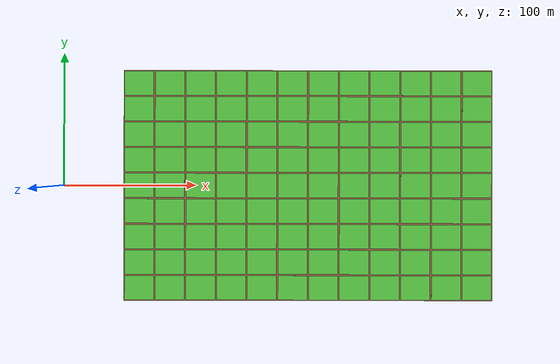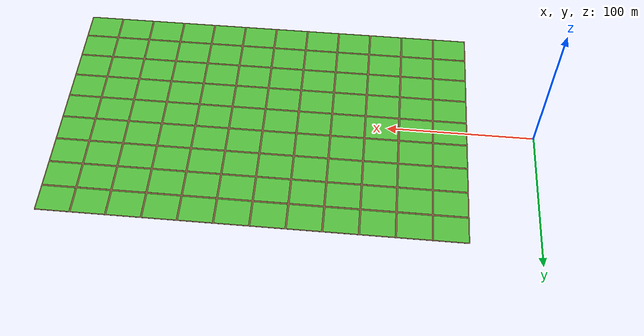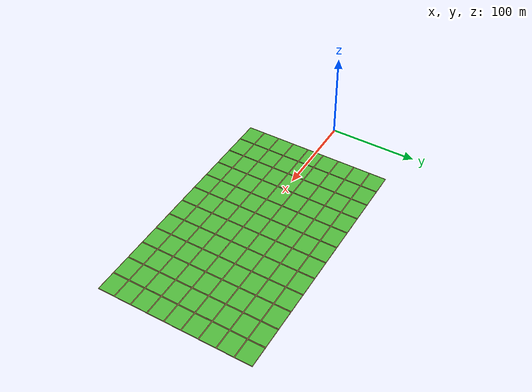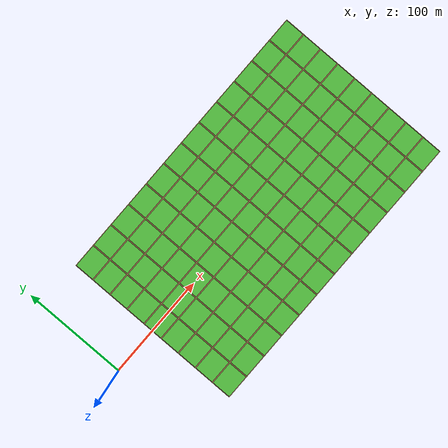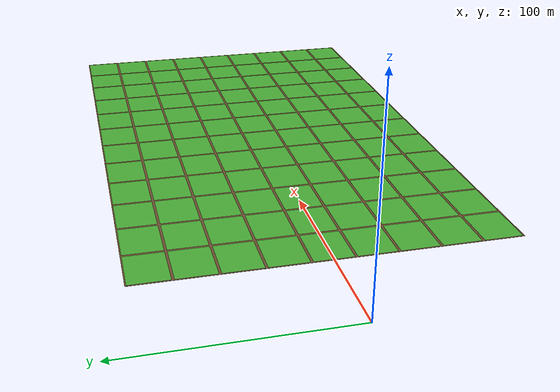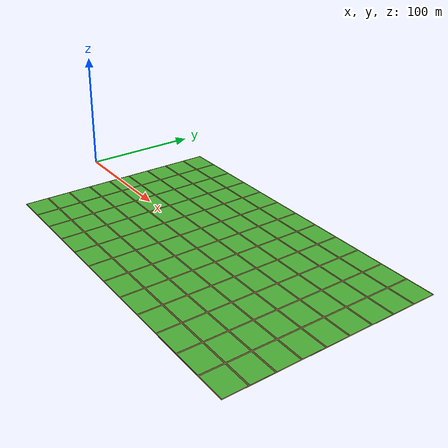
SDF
<sdf version="1.9">
 <world name="agricultural_field">
  <model name="sawah_kanan_atas">
   <static>true</static>
   <pose>185 0 0 0 0 0</pose>
   <link name="link">
    <visual name="soil_base">
     <geometry><box><size>280.00 175.00 0.10</size></box></geometry>
     <material><ambient>0.35 0.25 0.15 1</ambient><diffuse>0.45 0.32 0.20 1</diffuse></material>
    </visual>
    <visual name="plot_0">
     <pose>-128.33 -77.78 0.060 0 0 0</pose>
     <geometry><box><size>22.13 18.24 0.02</size></box></geometry>
     <material><ambient>0.20 0.50 0.15 1</ambient><diffuse>0.30 0.70 0.22 1</diffuse></material>
    </visual>
    <visual name="plot_1">
     <pose>-128.33 -58.33 0.060 0 0 0</pose>
     <geometry><box><size>22.13 18.24 0.02</size></box></geometry>
     <material><ambient>0.20 0.50 0.15 1</ambient><diffuse>0.30 0.70 0.22 1</diffuse></material>
    </visual>
    <visual name="plot_2">
     <pose>-128.33 -38.89 0.060 0 0 0</pose>
     <geometry><box><size>22.13 18.24 0.02</size></box></geometry>
     <material><ambient>0.20 0.50 0.15 1</ambient><diffuse>0.30 0.70 0.22 1</diffuse></material>
    </visual>
    <visual name="plot_3">
     <pose>-128.33 -19.44 0.060 0 0 0</pose>
     <geometry><box><size>22.13 18.24 0.02</size></box></geometry>
     <material><ambient>0.20 0.50 0.15 1</ambient><diffuse>0.30 0.70 0.22 1</diffuse></material>
    </visual>
    <visual name="plot_4">
     <pose>-128.33 0.00 0.060 0 0 0</pose>
     <geometry><box><size>22.13 18.24 0.02</size></box></geometry>
     <material><ambient>0.20 0.50 0.15 1</ambient><diffuse>0.30 0.70 0.22 1</diffuse></material>
    </visual>
    <visual name="plot_5">
     <pose>-128.33 19.44 0.060 0 0 0</pose>
     <geometry><box><size>22.13 18.24 0.02</size></box></geometry>
     <material><ambient>0.20 0.50 0.15 1</ambient><diffuse>0.30 0.70 0.22 1</diffuse></material>
    </visual>
    <visual name="plot_6">
     <pose>-128.33 38.89 0.060 0 0 0</pose>
     <geometry><box><size>22.13 18.24 0.02</size></box></geometry>
     <material><ambient>0.20 0.50 0.15 1</ambient><diffuse>0.30 0.70 0.22 1</diffuse></material>
    </visual>
    <visual name="plot_7">
     <pose>-128.33 58.33 0.060 0 0 0</pose>
     <geometry><box><size>22.13 18.24 0.02</size></box></geometry>
     <material><ambient>0.20 0.50 0.15 1</ambient><diffuse>0.30 0.70 0.22 1</diffuse></material>
    </visual>
    <visual name="plot_8">
     <pose>-128.33 77.78 0.060 0 0 0</pose>
     <geometry><box><size>22.13 18.24 0.02</size></box></geometry>
     <material><ambient>0.20 0.50 0.15 1</ambient><diffuse>0.30 0.70 0.22 1</diffuse></material>
    </visual>
    <visual name="plot_9">
     <pose>-105.00 -77.78 0.060 0 0 0</pose>
     <geometry><box><size>22.13 18.24 0.02</size></box></geometry>
     <material><ambient>0.20 0.50 0.15 1</ambient><diffuse>0.30 0.70 0.22 1</diffuse></material>
    </visual>
    <visual name="plot_10">
     <pose>-105.00 -58.33 0.060 0 0 0</pose>
     <geometry><box><size>22.13 18.24 0.02</size></box></geometry>
     <material><ambient>0.20 0.50 0.15 1</ambient><diffuse>0.30 0.70 0.22 1</diffuse></material>
    </visual>
    <visual name="plot_11">
     <pose>-105.00 -38.89 0.060 0 0 0</pose>
     <geometry><box><size>22.13 18.24 0.02</size></box></geometry>
     <material><ambient>0.20 0.50 0.15 1</ambient><diffuse>0.30 0.70 0.22 1</diffuse></material>
    </visual>
    <visual name="plot_12">
     <pose>-105.00 -19.44 0.060 0 0 0</pose>
     <geometry><box><size>22.13 18.24 0.02</size></box></geometry>
     <material><ambient>0.20 0.50 0.15 1</ambient><diffuse>0.30 0.70 0.22 1</diffuse></material>
    </visual>
    <visual name="plot_13">
     <pose>-105.00 0.00 0.060 0 0 0</pose>
     <geometry><box><size>22.13 18.24 0.02</size></box></geometry>
     <material><ambient>0.20 0.50 0.15 1</ambient><diffuse>0.30 0.70 0.22 1</diffuse></material>
    </visual>
    <visual name="plot_14">
     <pose>-105.00 19.44 0.060 0 0 0</pose>
     <geometry><box><size>22.13 18.24 0.02</size></box></geometry>
     <material><ambient>0.20 0.50 0.15 1</ambient><diffuse>0.30 0.70 0.22 1</diffuse></material>
    </visual>
    <visual name="plot_15">
     <pose>-105.00 38.89 0.060 0 0 0</pose>
     <geometry><box><size>22.13 18.24 0.02</size></box></geometry>
     <material><ambient>0.20 0.50 0.15 1</ambient><diffuse>0.30 0.70 0.22 1</diffuse></material>
    </visual>
    <visual name="plot_16">
     <pose>-105.00 58.33 0.060 0 0 0</pose>
     <geometry><box><size>22.13 18.24 0.02</size></box></geometry>
     <material><ambient>0.20 0.50 0.15 1</ambient><diffuse>0.30 0.70 0.22 1</diffuse></material>
    </visual>
    <visual name="plot_17">
     <pose>-105.00 77.78 0.060 0 0 0</pose>
     <geometry><box><size>22.13 18.24 0.02</size></box></geometry>
     <material><ambient>0.20 0.50 0.15 1</ambient><diffuse>0.30 0.70 0.22 1</diffuse></material>
    </visual>
    <visual name="plot_18">
     <pose>-81.67 -77.78 0.060 0 0 0</pose>
     <geometry><box><size>22.13 18.24 0.02</size></box></geometry>
     <material><ambient>0.20 0.50 0.15 1</ambient><diffuse>0.30 0.70 0.22 1</diffuse></material>
    </visual>
    <visual name="plot_19">
     <pose>-81.67 -58.33 0.060 0 0 0</pose>
     <geometry><box><size>22.13 18.24 0.02</size></box></geometry>
     <material><ambient>0.20 0.50 0.15 1</ambient><diffuse>0.30 0.70 0.22 1</diffuse></material>
    </visual>
    <visual name="plot_20">
     <pose>-81.67 -38.89 0.060 0 0 0</pose>
     <geometry><box><size>22.13 18.24 0.02</size></box></geometry>
     <material><ambient>0.20 0.50 0.15 1</ambient><diffuse>0.30 0.70 0.22 1</diffuse></material>
    </visual>
    <visual name="plot_21">
     <pose>-81.67 -19.44 0.060 0 0 0</pose>
     <geometry><box><size>22.13 18.24 0.02</size></box></geometry>
     <material><ambient>0.20 0.50 0.15 1</ambient><diffuse>0.30 0.70 0.22 1</diffuse></material>
    </visual>
    <visual name="plot_22">
     <pose>-81.67 0.00 0.060 0 0 0</pose>
     <geometry><box><size>22.13 18.24 0.02</size></box></geometry>
     <material><ambient>0.20 0.50 0.15 1</ambient><diffuse>0.30 0.70 0.22 1</diffuse></material>
    </visual>
    <visual name="plot_23">
     <pose>-81.67 19.44 0.060 0 0 0</pose>
     <geometry><box><size>22.13 18.24 0.02</size></box></geometry>
     <material><ambient>0.20 0.50 0.15 1</ambient><diffuse>0.30 0.70 0.22 1</diffuse></material>
    </visual>
    <visual name="plot_24">
     <pose>-81.67 38.89 0.060 0 0 0</pose>
     <geometry><box><size>22.13 18.24 0.02</size></box></geometry>
     <material><ambient>0.20 0.50 0.15 1</ambient><diffuse>0.30 0.70 0.22 1</diffuse></material>
    </visual>
    <visual name="plot_25">
     <pose>-81.67 58.33 0.060 0 0 0</pose>
     <geometry><box><size>22.13 18.24 0.02</size></box></geometry>
     <material><ambient>0.20 0.50 0.15 1</ambient><diffuse>0.30 0.70 0.22 1</diffuse></material>
    </visual>
    <visual name="plot_26">
     <pose>-81.67 77.78 0.060 0 0 0</pose>
     <geometry><box><size>22.13 18.24 0.02</size></box></geometry>
     <material><ambient>0.20 0.50 0.15 1</ambient><diffuse>0.30 0.70 0.22 1</diffuse></material>
    </visual>
    <visual name="plot_27">
     <pose>-58.33 -77.78 0.060 0 0 0</pose>
     <geometry><box><size>22.13 18.24 0.02</size></box></geometry>
     <material><ambient>0.20 0.50 0.15 1</ambient><diffuse>0.30 0.70 0.22 1</diffuse></material>
    </visual>
    <visual name="plot_28">
     <pose>-58.33 -58.33 0.060 0 0 0</pose>
     <geometry><box><size>22.13 18.24 0.02</size></box></geometry>
     <material><ambient>0.20 0.50 0.15 1</ambient><diffuse>0.30 0.70 0.22 1</diffuse></material>
    </visual>
    <visual name="plot_29">
     <pose>-58.33 -38.89 0.060 0 0 0</pose>
     <geometry><box><size>22.13 18.24 0.02</size></box></geometry>
     <material><ambient>0.20 0.50 0.15 1</ambient><diffuse>0.30 0.70 0.22 1</diffuse></material>
    </visual>
    <visual name="plot_30">
     <pose>-58.33 -19.44 0.060 0 0 0</pose>
     <geometry><box><size>22.13 18.24 0.02</size></box></geometry>
     <material><ambient>0.20 0.50 0.15 1</ambient><diffuse>0.30 0.70 0.22 1</diffuse></material>
    </visual>
    <visual name="plot_31">
     <pose>-58.33 0.00 0.060 0 0 0</pose>
     <geometry><box><size>22.13 18.24 0.02</size></box></geometry>
     <material><ambient>0.20 0.50 0.15 1</ambient><diffuse>0.30 0.70 0.22 1</diffuse></material>
    </visual>
    <visual name="plot_32">
     <pose>-58.33 19.44 0.060 0 0 0</pose>
     <geometry><box><size>22.13 18.24 0.02</size></box></geometry>
     <material><ambient>0.20 0.50 0.15 1</ambient><diffuse>0.30 0.70 0.22 1</diffuse></material>
    </visual>
    <visual name="plot_33">
     <pose>-58.33 38.89 0.060 0 0 0</pose>
     <geometry><box><size>22.13 18.24 0.02</size></box></geometry>
     <material><ambient>0.20 0.50 0.15 1</ambient><diffuse>0.30 0.70 0.22 1</diffuse></material>
    </visual>
    <visual name="plot_34">
     <pose>-58.33 58.33 0.060 0 0 0</pose>
     <geometry><box><size>22.13 18.24 0.02</size></box></geometry>
     <material><ambient>0.20 0.50 0.15 1</ambient><diffuse>0.30 0.70 0.22 1</diffuse></material>
    </visual>
    <visual name="plot_35">
     <pose>-58.33 77.78 0.060 0 0 0</pose>
     <geometry><box><size>22.13 18.24 0.02</size></box></geometry>
     <material><ambient>0.20 0.50 0.15 1</ambient><diffuse>0.30 0.70 0.22 1</diffuse></material>
    </visual>
    <visual name="plot_36">
     <pose>-35.00 -77.78 0.060 0 0 0</pose>
     <geometry><box><size>22.13 18.24 0.02</size></box></geometry>
     <material><ambient>0.20 0.50 0.15 1</ambient><diffuse>0.30 0.70 0.22 1</diffuse></material>
    </visual>
    <visual name="plot_37">
     <pose>-35.00 -58.33 0.060 0 0 0</pose>
     <geometry><box><size>22.13 18.24 0.02</size></box></geometry>
     <material><ambient>0.20 0.50 0.15 1</ambient><diffuse>0.30 0.70 0.22 1</diffuse></material>
    </visual>
    <visual name="plot_38">
     <pose>-35.00 -38.89 0.060 0 0 0</pose>
     <geometry><box><size>22.13 18.24 0.02</size></box></geometry>
     <material><ambient>0.20 0.50 0.15 1</ambient><diffuse>0.30 0.70 0.22 1</diffuse></material>
    </visual>
    <visual name="plot_39">
     <pose>-35.00 -19.44 0.060 0 0 0</pose>
     <geometry><box><size>22.13 18.24 0.02</size></box></geometry>
     <material><ambient>0.20 0.50 0.15 1</ambient><diffuse>0.30 0.70 0.22 1</diffuse></material>
    </visual>
    <visual name="plot_40">
     <pose>-35.00 0.00 0.060 0 0 0</pose>
     <geometry><box><size>22.13 18.24 0.02</size></box></geometry>
     <material><ambient>0.20 0.50 0.15 1</ambient><diffuse>0.30 0.70 0.22 1</diffuse></material>
    </visual>
    <visual name="plot_41">
     <pose>-35.00 19.44 0.060 0 0 0</pose>
     <geometry><box><size>22.13 18.24 0.02</size></box></geometry>
     <material><ambient>0.20 0.50 0.15 1</ambient><diffuse>0.30 0.70 0.22 1</diffuse></material>
    </visual>
    <visual name="plot_42">
     <pose>-35.00 38.89 0.060 0 0 0</pose>
     <geometry><box><size>22.13 18.24 0.02</size></box></geometry>
     <material><ambient>0.20 0.50 0.15 1</ambient><diffuse>0.30 0.70 0.22 1</diffuse></material>
    </visual>
    <visual name="plot_43">
     <pose>-35.00 58.33 0.060 0 0 0</pose>
     <geometry><box><size>22.13 18.24 0.02</size></box></geometry>
     <material><ambient>0.20 0.50 0.15 1</ambient><diffuse>0.30 0.70 0.22 1</diffuse></material>
    </visual>
    <visual name="plot_44">
     <pose>-35.00 77.78 0.060 0 0 0</pose>
     <geometry><box><size>22.13 18.24 0.02</size></box></geometry>
     <material><ambient>0.20 0.50 0.15 1</ambient><diffuse>0.30 0.70 0.22 1</diffuse></material>
    </visual>
    <visual name="plot_45">
     <pose>-11.67 -77.78 0.060 0 0 0</pose>
     <geometry><box><size>22.13 18.24 0.02</size></box></geometry>
     <material><ambient>0.20 0.50 0.15 1</ambient><diffuse>0.30 0.70 0.22 1</diffuse></material>
    </visual>
    <visual name="plot_46">
     <pose>-11.67 -58.33 0.060 0 0 0</pose>
     <geometry><box><size>22.13 18.24 0.02</size></box></geometry>
     <material><ambient>0.20 0.50 0.15 1</ambient><diffuse>0.30 0.70 0.22 1</diffuse></material>
    </visual>
    <visual name="plot_47">
     <pose>-11.67 -38.89 0.060 0 0 0</pose>
     <geometry><box><size>22.13 18.24 0.02</size></box></geometry>
     <material><ambient>0.20 0.50 0.15 1</ambient><diffuse>0.30 0.70 0.22 1</diffuse></material>
    </visual>
    <visual name="plot_48">
     <pose>-11.67 -19.44 0.060 0 0 0</pose>
     <geometry><box><size>22.13 18.24 0.02</size></box></geometry>
     <material><ambient>0.20 0.50 0.15 1</ambient><diffuse>0.30 0.70 0.22 1</diffuse></material>
    </visual>
    <visual name="plot_49">
     <pose>-11.67 0.00 0.060 0 0 0</pose>
     <geometry><box><size>22.13 18.24 0.02</size></box></geometry>
     <material><ambient>0.20 0.50 0.15 1</ambient><diffuse>0.30 0.70 0.22 1</diffuse></material>
    </visual>
    <visual name="plot_50">
     <pose>-11.67 19.44 0.060 0 0 0</pose>
     <geometry><box><size>22.13 18.24 0.02</size></box></geometry>
     <material><ambient>0.20 0.50 0.15 1</ambient><diffuse>0.30 0.70 0.22 1</diffuse></material>
    </visual>
    <visual name="plot_51">
     <pose>-11.67 38.89 0.060 0 0 0</pose>
     <geometry><box><size>22.13 18.24 0.02</size></box></geometry>
     <material><ambient>0.20 0.50 0.15 1</ambient><diffuse>0.30 0.70 0.22 1</diffuse></material>
    </visual>
    <visual name="plot_52">
     <pose>-11.67 58.33 0.060 0 0 0</pose>
     <geometry><box><size>22.13 18.24 0.02</size></box></geometry>
     <material><ambient>0.20 0.50 0.15 1</ambient><diffuse>0.30 0.70 0.22 1</diffuse></material>
    </visual>
    <visual name="plot_53">
     <pose>-11.67 77.78 0.060 0 0 0</pose>
     <geometry><box><size>22.13 18.24 0.02</size></box></geometry>
     <material><ambient>0.20 0.50 0.15 1</ambient><diffuse>0.30 0.70 0.22 1</diffuse></material>
    </visual>
    <visual name="plot_54">
     <pose>11.67 -77.78 0.060 0 0 0</pose>
     <geometry><box><size>22.13 18.24 0.02</size></box></geometry>
     <material><ambient>0.20 0.50 0.15 1</ambient><diffuse>0.30 0.70 0.22 1</diffuse></material>
    </visual>
    <visual name="plot_55">
     <pose>11.67 -58.33 0.060 0 0 0</pose>
     <geometry><box><size>22.13 18.24 0.02</size></box></geometry>
     <material><ambient>0.20 0.50 0.15 1</ambient><diffuse>0.30 0.70 0.22 1</diffuse></material>
    </visual>
    <visual name="plot_56">
     <pose>11.67 -38.89 0.060 0 0 0</pose>
     <geometry><box><size>22.13 18.24 0.02</size></box></geometry>
     <material><ambient>0.20 0.50 0.15 1</ambient><diffuse>0.30 0.70 0.22 1</diffuse></material>
    </visual>
    <visual name="plot_57">
     <pose>11.67 -19.44 0.060 0 0 0</pose>
     <geometry><box><size>22.13 18.24 0.02</size></box></geometry>
     <material><ambient>0.20 0.50 0.15 1</ambient><diffuse>0.30 0.70 0.22 1</diffuse></material>
    </visual>
    <visual name="plot_58">
     <pose>11.67 0.00 0.060 0 0 0</pose>
     <geometry><box><size>22.13 18.24 0.02</size></box></geometry>
     <material><ambient>0.20 0.50 0.15 1</ambient><diffuse>0.30 0.70 0.22 1</diffuse></material>
    </visual>
    <visual name="plot_59">
     <pose>11.67 19.44 0.060 0 0 0</pose>
     <geometry><box><size>22.13 18.24 0.02</size></box></geometry>
     <material><ambient>0.20 0.50 0.15 1</ambient><diffuse>0.30 0.70 0.22 1</diffuse></material>
    </visual>
    <visual name="plot_60">
     <pose>11.67 38.89 0.060 0 0 0</pose>
     <geometry><box><size>22.13 18.24 0.02</size></box></geometry>
     <material><ambient>0.20 0.50 0.15 1</ambient><diffuse>0.30 0.70 0.22 1</diffuse></material>
    </visual>
    <visual name="plot_61">
     <pose>11.67 58.33 0.060 0 0 0</pose>
     <geometry><box><size>22.13 18.24 0.02</size></box></geometry>
     <material><ambient>0.20 0.50 0.15 1</ambient><diffuse>0.30 0.70 0.22 1</diffuse></material>
    </visual>
    <visual name="plot_62">
     <pose>11.67 77.78 0.060 0 0 0</pose>
     <geometry><box><size>22.13 18.24 0.02</size></box></geometry>
     <material><ambient>0.20 0.50 0.15 1</ambient><diffuse>0.30 0.70 0.22 1</diffuse></material>
    </visual>
    <visual name="plot_63">
     <pose>35.00 -77.78 0.060 0 0 0</pose>
     <geometry><box><size>22.13 18.24 0.02</size></box></geometry>
     <material><ambient>0.20 0.50 0.15 1</ambient><diffuse>0.30 0.70 0.22 1</diffuse></material>
    </visual>
    <visual name="plot_64">
     <pose>35.00 -58.33 0.060 0 0 0</pose>
     <geometry><box><size>22.13 18.24 0.02</size></box></geometry>
     <material><ambient>0.20 0.50 0.15 1</ambient><diffuse>0.30 0.70 0.22 1</diffuse></material>
    </visual>
    <visual name="plot_65">
     <pose>35.00 -38.89 0.060 0 0 0</pose>
     <geometry><box><size>22.13 18.24 0.02</size></box></geometry>
     <material><ambient>0.20 0.50 0.15 1</ambient><diffuse>0.30 0.70 0.22 1</diffuse></material>
    </visual>
    <visual name="plot_66">
     <pose>35.00 -19.44 0.060 0 0 0</pose>
     <geometry><box><size>22.13 18.24 0.02</size></box></geometry>
     <material><ambient>0.20 0.50 0.15 1</ambient><diffuse>0.30 0.70 0.22 1</diffuse></material>
    </visual>
    <visual name="plot_67">
     <pose>35.00 0.00 0.060 0 0 0</pose>
     <geometry><box><size>22.13 18.24 0.02</size></box></geometry>
     <material><ambient>0.20 0.50 0.15 1</ambient><diffuse>0.30 0.70 0.22 1</diffuse></material>
    </visual>
    <visual name="plot_68">
     <pose>35.00 19.44 0.060 0 0 0</pose>
     <geometry><box><size>22.13 18.24 0.02</size></box></geometry>
     <material><ambient>0.20 0.50 0.15 1</ambient><diffuse>0.30 0.70 0.22 1</diffuse></material>
    </visual>
    <visual name="plot_69">
     <pose>35.00 38.89 0.060 0 0 0</pose>
     <geometry><box><size>22.13 18.24 0.02</size></box></geometry>
     <material><ambient>0.20 0.50 0.15 1</ambient><diffuse>0.30 0.70 0.22 1</diffuse></material>
    </visual>
    <visual name="plot_70">
     <pose>35.00 58.33 0.060 0 0 0</pose>
     <geometry><box><size>22.13 18.24 0.02</size></box></geometry>
     <material><ambient>0.20 0.50 0.15 1</ambient><diffuse>0.30 0.70 0.22 1</diffuse></material>
    </visual>
    <visual name="plot_71">
     <pose>35.00 77.78 0.060 0 0 0</pose>
     <geometry><box><size>22.13 18.24 0.02</size></box></geometry>
     <material><ambient>0.20 0.50 0.15 1</ambient><diffuse>0.30 0.70 0.22 1</diffuse></material>
    </visual>
    <visual name="plot_72">
     <pose>58.33 -77.78 0.060 0 0 0</pose>
     <geometry><box><size>22.13 18.24 0.02</size></box></geometry>
     <material><ambient>0.20 0.50 0.15 1</ambient><diffuse>0.30 0.70 0.22 1</diffuse></material>
    </visual>
    <visual name="plot_73">
     <pose>58.33 -58.33 0.060 0 0 0</pose>
     <geometry><box><size>22.13 18.24 0.02</size></box></geometry>
     <material><ambient>0.20 0.50 0.15 1</ambient><diffuse>0.30 0.70 0.22 1</diffuse></material>
    </visual>
    <visual name="plot_74">
     <pose>58.33 -38.89 0.060 0 0 0</pose>
     <geometry><box><size>22.13 18.24 0.02</size></box></geometry>
     <material><ambient>0.20 0.50 0.15 1</ambient><diffuse>0.30 0.70 0.22 1</diffuse></material>
    </visual>
    <visual name="plot_75">
     <pose>58.33 -19.44 0.060 0 0 0</pose>
     <geometry><box><size>22.13 18.24 0.02</size></box></geometry>
     <material><ambient>0.20 0.50 0.15 1</ambient><diffuse>0.30 0.70 0.22 1</diffuse></material>
    </visual>
    <visual name="plot_76">
     <pose>58.33 0.00 0.060 0 0 0</pose>
     <geometry><box><size>22.13 18.24 0.02</size></box></geometry>
     <material><ambient>0.20 0.50 0.15 1</ambient><diffuse>0.30 0.70 0.22 1</diffuse></material>
    </visual>
    <visual name="plot_77">
     <pose>58.33 19.44 0.060 0 0 0</pose>
     <geometry><box><size>22.13 18.24 0.02</size></box></geometry>
     <material><ambient>0.20 0.50 0.15 1</ambient><diffuse>0.30 0.70 0.22 1</diffuse></material>
    </visual>
    <visual name="plot_78">
     <pose>58.33 38.89 0.060 0 0 0</pose>
     <geometry><box><size>22.13 18.24 0.02</size></box></geometry>
     <material><ambient>0.20 0.50 0.15 1</ambient><diffuse>0.30 0.70 0.22 1</diffuse></material>
    </visual>
    <visual name="plot_79">
     <pose>58.33 58.33 0.060 0 0 0</pose>
     <geometry><box><size>22.13 18.24 0.02</size></box></geometry>
     <material><ambient>0.20 0.50 0.15 1</ambient><diffuse>0.30 0.70 0.22 1</diffuse></material>
    </visual>
    <visual name="plot_80">
     <pose>58.33 77.78 0.060 0 0 0</pose>
     <geometry><box><size>22.13 18.24 0.02</size></box></geometry>
     <material><ambient>0.20 0.50 0.15 1</ambient><diffuse>0.30 0.70 0.22 1</diffuse></material>
    </visual>
    <visual name="plot_81">
     <pose>81.67 -77.78 0.060 0 0 0</pose>
     <geometry><box><size>22.13 18.24 0.02</size></box></geometry>
     <material><ambient>0.20 0.50 0.15 1</ambient><diffuse>0.30 0.70 0.22 1</diffuse></material>
    </visual>
    <visual name="plot_82">
     <pose>81.67 -58.33 0.060 0 0 0</pose>
     <geometry><box><size>22.13 18.24 0.02</size></box></geometry>
     <material><ambient>0.20 0.50 0.15 1</ambient><diffuse>0.30 0.70 0.22 1</diffuse></material>
    </visual>
    <visual name="plot_83">
     <pose>81.67 -38.89 0.060 0 0 0</pose>
     <geometry><box><size>22.13 18.24 0.02</size></box></geometry>
     <material><ambient>0.20 0.50 0.15 1</ambient><diffuse>0.30 0.70 0.22 1</diffuse></material>
    </visual>
    <visual name="plot_84">
     <pose>81.67 -19.44 0.060 0 0 0</pose>
     <geometry><box><size>22.13 18.24 0.02</size></box></geometry>
     <material><ambient>0.20 0.50 0.15 1</ambient><diffuse>0.30 0.70 0.22 1</diffuse></material>
    </visual>
    <visual name="plot_85">
     <pose>81.67 0.00 0.060 0 0 0</pose>
     <geometry><box><size>22.13 18.24 0.02</size></box></geometry>
     <material><ambient>0.20 0.50 0.15 1</ambient><diffuse>0.30 0.70 0.22 1</diffuse></material>
    </visual>
    <visual name="plot_86">
     <pose>81.67 19.44 0.060 0 0 0</pose>
     <geometry><box><size>22.13 18.24 0.02</size></box></geometry>
     <material><ambient>0.20 0.50 0.15 1</ambient><diffuse>0.30 0.70 0.22 1</diffuse></material>
    </visual>
    <visual name="plot_87">
     <pose>81.67 38.89 0.060 0 0 0</pose>
     <geometry><box><size>22.13 18.24 0.02</size></box></geometry>
     <material><ambient>0.20 0.50 0.15 1</ambient><diffuse>0.30 0.70 0.22 1</diffuse></material>
    </visual>
    <visual name="plot_88">
     <pose>81.67 58.33 0.060 0 0 0</pose>
     <geometry><box><size>22.13 18.24 0.02</size></box></geometry>
     <material><ambient>0.20 0.50 0.15 1</ambient><diffuse>0.30 0.70 0.22 1</diffuse></material>
    </visual>
    <visual name="plot_89">
     <pose>81.67 77.78 0.060 0 0 0</pose>
     <geometry><box><size>22.13 18.24 0.02</size></box></geometry>
     <material><ambient>0.20 0.50 0.15 1</ambient><diffuse>0.30 0.70 0.22 1</diffuse></material>
    </visual>
    <visual name="plot_90">
     <pose>105.00 -77.78 0.060 0 0 0</pose>
     <geometry><box><size>22.13 18.24 0.02</size></box></geometry>
     <material><ambient>0.20 0.50 0.15 1</ambient><diffuse>0.30 0.70 0.22 1</diffuse></material>
    </visual>
    <visual name="plot_91">
     <pose>105.00 -58.33 0.060 0 0 0</pose>
     <geometry><box><size>22.13 18.24 0.02</size></box></geometry>
     <material><ambient>0.20 0.50 0.15 1</ambient><diffuse>0.30 0.70 0.22 1</diffuse></material>
    </visual>
    <visual name="plot_92">
     <pose>105.00 -38.89 0.060 0 0 0</pose>
     <geometry><box><size>22.13 18.24 0.02</size></box></geometry>
     <material><ambient>0.20 0.50 0.15 1</ambient><diffuse>0.30 0.70 0.22 1</diffuse></material>
    </visual>
    <visual name="plot_93">
     <pose>105.00 -19.44 0.060 0 0 0</pose>
     <geometry><box><size>22.13 18.24 0.02</size></box></geometry>
     <material><ambient>0.20 0.50 0.15 1</ambient><diffuse>0.30 0.70 0.22 1</diffuse></material>
    </visual>
    <visual name="plot_94">
     <pose>105.00 0.00 0.060 0 0 0</pose>
     <geometry><box><size>22.13 18.24 0.02</size></box></geometry>
     <material><ambient>0.20 0.50 0.15 1</ambient><diffuse>0.30 0.70 0.22 1</diffuse></material>
    </visual>
    <visual name="plot_95">
     <pose>105.00 19.44 0.060 0 0 0</pose>
     <geometry><box><size>22.13 18.24 0.02</size></box></geometry>
     <material><ambient>0.20 0.50 0.15 1</ambient><diffuse>0.30 0.70 0.22 1</diffuse></material>
    </visual>
    <visual name="plot_96">
     <pose>105.00 38.89 0.060 0 0 0</pose>
     <geometry><box><size>22.13 18.24 0.02</size></box></geometry>
     <material><ambient>0.20 0.50 0.15 1</ambient><diffuse>0.30 0.70 0.22 1</diffuse></material>
    </visual>
    <visual name="plot_97">
     <pose>105.00 58.33 0.060 0 0 0</pose>
     <geometry><box><size>22.13 18.24 0.02</size></box></geometry>
     <material><ambient>0.20 0.50 0.15 1</ambient><diffuse>0.30 0.70 0.22 1</diffuse></material>
    </visual>
    <visual name="plot_98">
     <pose>105.00 77.78 0.060 0 0 0</pose>
     <geometry><box><size>22.13 18.24 0.02</size></box></geometry>
     <material><ambient>0.20 0.50 0.15 1</ambient><diffuse>0.30 0.70 0.22 1</diffuse></material>
    </visual>
    <visual name="plot_99">
     <pose>128.33 -77.78 0.060 0 0 0</pose>
     <geometry><box><size>22.13 18.24 0.02</size></box></geometry>
     <material><ambient>0.20 0.50 0.15 1</ambient><diffuse>0.30 0.70 0.22 1</diffuse></material>
    </visual>
    <visual name="plot_100">
     <pose>128.33 -58.33 0.060 0 0 0</pose>
     <geometry><box><size>22.13 18.24 0.02</size></box></geometry>
     <material><ambient>0.20 0.50 0.15 1</ambient><diffuse>0.30 0.70 0.22 1</diffuse></material>
    </visual>
    <visual name="plot_101">
     <pose>128.33 -38.89 0.060 0 0 0</pose>
     <geometry><box><size>22.13 18.24 0.02</size></box></geometry>
     <material><ambient>0.20 0.50 0.15 1</ambient><diffuse>0.30 0.70 0.22 1</diffuse></material>
    </visual>
    <visual name="plot_102">
     <pose>128.33 -19.44 0.060 0 0 0</pose>
     <geometry><box><size>22.13 18.24 0.02</size></box></geometry>
     <material><ambient>0.20 0.50 0.15 1</ambient><diffuse>0.30 0.70 0.22 1</diffuse></material>
    </visual>
    <visual name="plot_103">
     <pose>128.33 0.00 0.060 0 0 0</pose>
     <geometry><box><size>22.13 18.24 0.02</size></box></geometry>
     <material><ambient>0.20 0.50 0.15 1</ambient><diffuse>0.30 0.70 0.22 1</diffuse></material>
    </visual>
    <visual name="plot_104">
     <pose>128.33 19.44 0.060 0 0 0</pose>
     <geometry><box><size>22.13 18.24 0.02</size></box></geometry>
     <material><ambient>0.20 0.50 0.15 1</ambient><diffuse>0.30 0.70 0.22 1</diffuse></material>
    </visual>
    <visual name="plot_105">
     <pose>128.33 38.89 0.060 0 0 0</pose>
     <geometry><box><size>22.13 18.24 0.02</size></box></geometry>
     <material><ambient>0.20 0.50 0.15 1</ambient><diffuse>0.30 0.70 0.22 1</diffuse></material>
    </visual>
    <visual name="plot_106">
     <pose>128.33 58.33 0.060 0 0 0</pose>
     <geometry><box><size>22.13 18.24 0.02</size></box></geometry>
     <material><ambient>0.20 0.50 0.15 1</ambient><diffuse>0.30 0.70 0.22 1</diffuse></material>
    </visual>
    <visual name="plot_107">
     <pose>128.33 77.78 0.060 0 0 0</pose>
     <geometry><box><size>22.13 18.24 0.02</size></box></geometry>
     <material><ambient>0.20 0.50 0.15 1</ambient><diffuse>0.30 0.70 0.22 1</diffuse></material>
    </visual>
    <collision name="col_3"><geometry><box><size>280 175 0.1</size></box></geometry></collision>
   </link>
  </model>
 </world>
</sdf>
